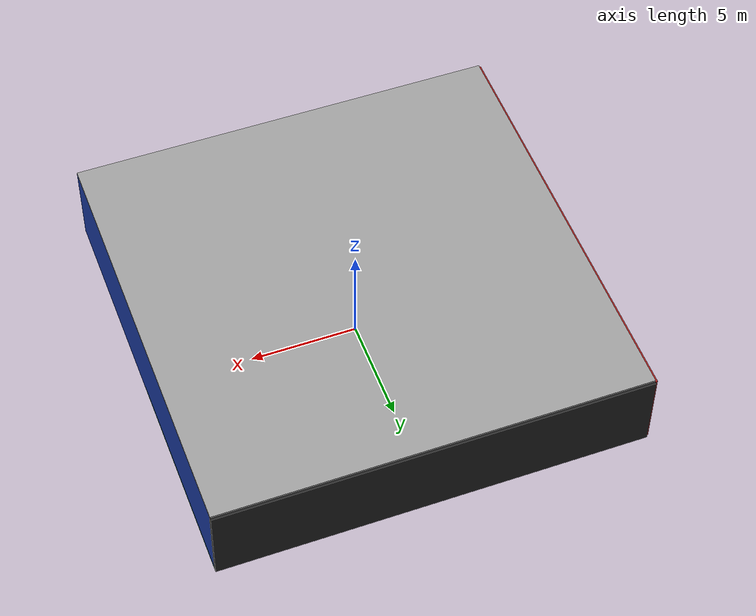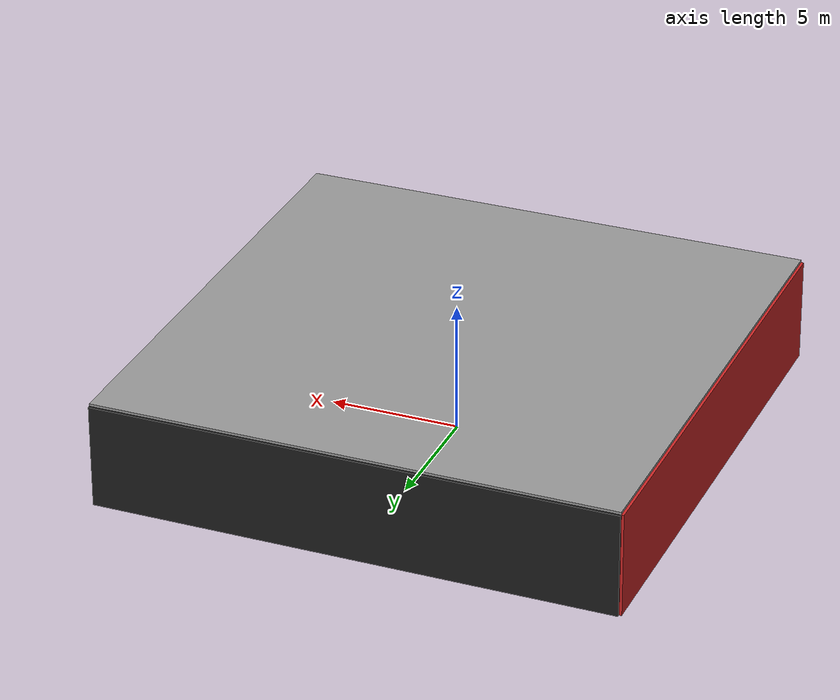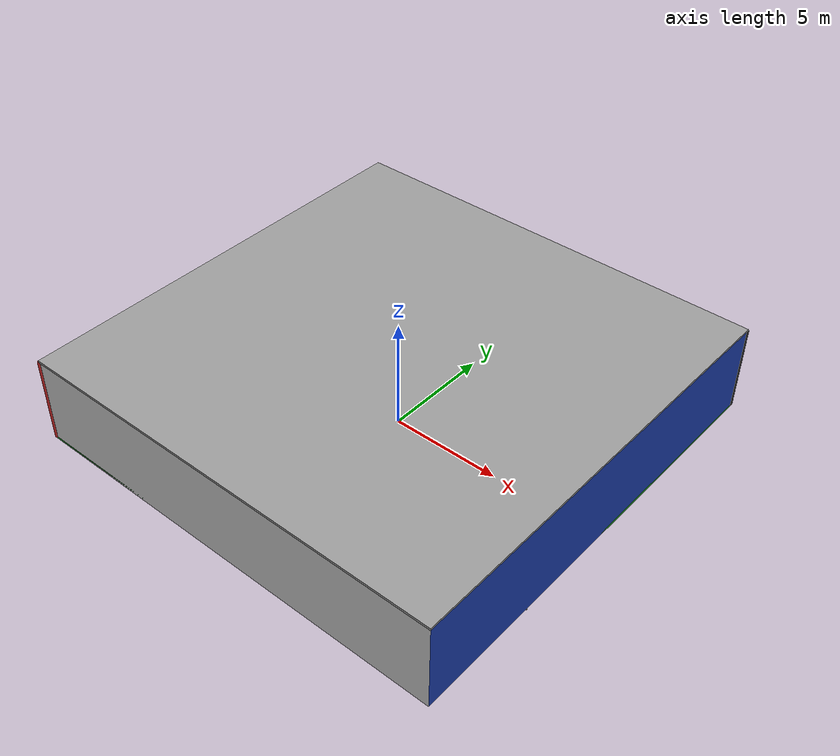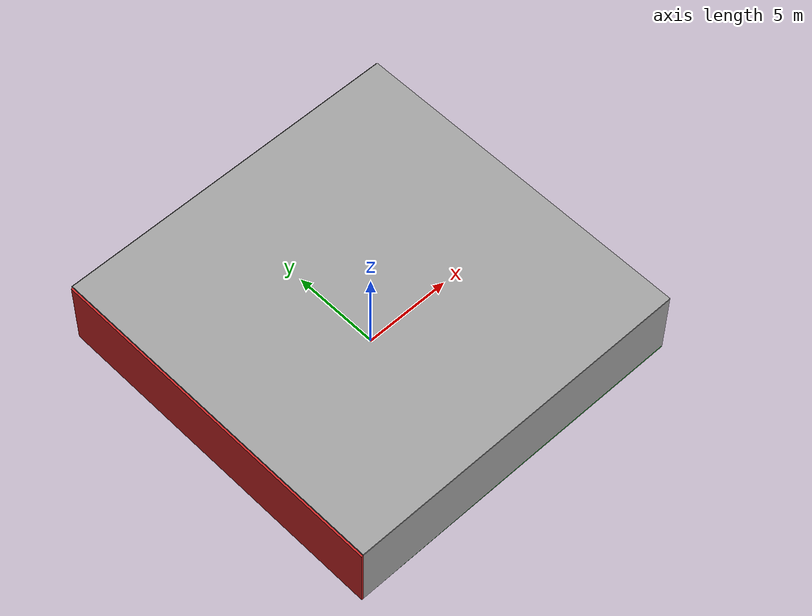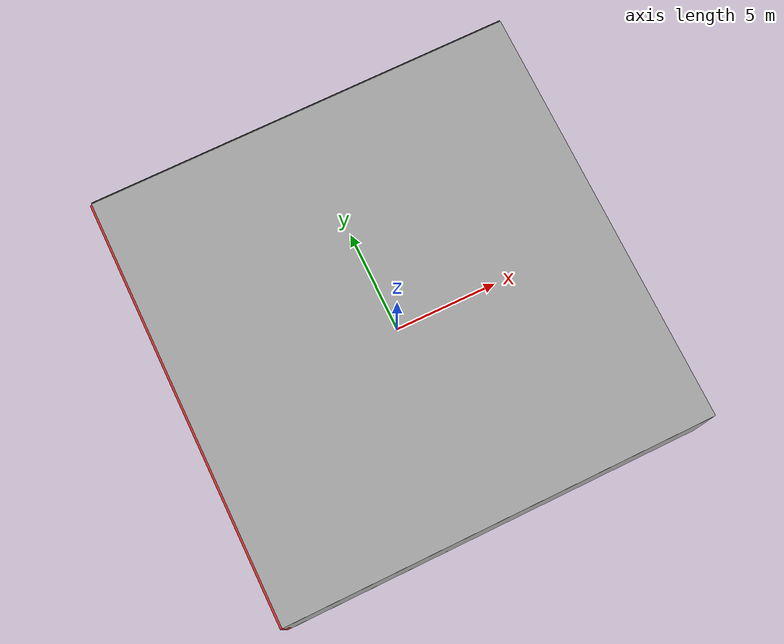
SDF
<sdf version="1.4">
 <world name="default">
  <physics type="ode">
   <max_step_size>0.001</max_step_size>
   <real_time_factor>1</real_time_factor>
   <real_time_update_rate>1000</real_time_update_rate>
   <gravity>0 0 -9.8</gravity>
  </physics>
  <scene><ambient>0.4 0.4 0.4 1</ambient><background>0.7 0.7 0.7 1</background><shadows>1</shadows></scene>
  <model name="Surrounding">
   <static>1</static>
   <link name="Ceiling">
    <collision name="Ceiling_Collision"><geometry><box><size>20 20 0.1</size></box></geometry></collision>
    <visual name="Ceiling_Visual">
     <geometry><box><size>20 20 0.1</size></box></geometry>
     <material>
      <script><uri>file://media/materials/scripts/gazebo.material</uri><name>Gazebo/Grey</name></script>
     </material>
    </visual>
    <pose>0 0 4.05 0 0 0</pose>
   </link>
   <link name="Wall_South">
    <collision name="Wall_South_Collision">
     <geometry><box><size>20 0 4</size></box></geometry>
     <pose>0 0 2 0 -0 0</pose>
    </collision>
    <visual name="Wall_South_Visual">
     <pose>0 0 2 0 -0 0</pose>
     <geometry><box><size>20 0 4</size></box></geometry>
     <material>
      <script><uri>file://media/materials/scripts/gazebo.material</uri><name>Gazebo/CloudySky</name></script>
     </material>
    </visual>
    <velocity_decay><linear>0</linear><angular>0</angular></velocity_decay>
    <pose>0 -10 0 0 -0 0</pose>
   </link>
   <link name="Wall_East">
    <collision name="Wall_21_Collision">
     <geometry><box><size>20 0 4</size></box></geometry>
     <pose>0 0 2 0 -0 0</pose>
    </collision>
    <visual name="Wall_21_Visual">
     <pose>0 0 2 0 -0 0</pose>
     <geometry><box><size>20 0 4</size></box></geometry>
     <material>
      <script><uri>file://media/materials/scripts/gazebo.material</uri><name>Gazebo/BlueLaser</name></script>
     </material>
    </visual>
    <velocity_decay><linear>0</linear><angular>0</angular></velocity_decay>
    <pose>10 0 0 0 -0 1.5708</pose>
   </link>
   <link name="Wall_North">
    <collision name="Wall_22_Collision">
     <geometry><box><size>20 0.2 4</size></box></geometry>
     <pose>0 0 2 0 -0 0</pose>
    </collision>
    <visual name="Wall_22_Visual">
     <pose>0 0 2 0 -0 0</pose>
     <geometry><box><size>20 0.2 4</size></box></geometry>
     <material>
      <script><uri>file://media/materials/scripts/gazebo.material</uri><name>Gazebo/Black</name></script>
     </material>
    </visual>
    <velocity_decay><linear>0</linear><angular>0</angular></velocity_decay>
    <pose>0 10 0 0 -0 0</pose>
   </link>
   <link name="Wall_West">
    <collision name="Wall_23_Collision">
     <geometry><box><size>20 0.2 4</size></box></geometry>
     <pose>0 0 2 0 -0 0</pose>
    </collision>
    <visual name="Wall_23_Visual">
     <pose>0 0 2 0 -0 0</pose>
     <geometry><box><size>20 0.2 4</size></box></geometry>
     <material>
      <script><uri>file://media/materials/scripts/gazebo.material</uri><name>Gazebo/RedBright</name></script>
     </material>
    </visual>
    <velocity_decay><linear>0</linear><angular>0</angular></velocity_decay>
    <pose>-10 0 0 0 0 -1.5708</pose>
   </link>
   <link name="Ground_link">
    <collision name="collision">
     <pose>0 0 .05 0 -0 0</pose>
     <geometry><box><size>20 20 0.1</size></box></geometry>
    </collision>
    <visual name="visual">
     <pose>0 0 .05 0 -0 0</pose>
     <geometry><box><size>20 20 0.1</size></box></geometry>
     <material>
      <script><uri>file://media/materials/scripts/gazebo.material</uri><name>Gazebo/Green</name></script>
     </material>
    </visual>
   </link>
   <static>1</static>
  </model>
  <spherical_coordinates>
   <surface_model>EARTH_WGS84</surface_model>
   <latitude_deg>0</latitude_deg>
   <longitude_deg>0</longitude_deg>
   <elevation>0</elevation>
   <heading_deg>0</heading_deg>
  </spherical_coordinates>
  <light name="lightball_0" type="diffuse">
   <diffuse>0.8 0.8 0.8 1</diffuse>
   <specular>0.2 0.2 0.2 1</specular>
   <attenuation>
    <range>100</range>
    <constant>0.7</constant>
    <linear>0.01</linear>
    <quadratic>0.001</quadratic>
   </attenuation>
   <direction>-0.5 0.1 -0.9</direction>
   <pose>-7.83642040015 -4.41997736614 3.72200089452 0 0 0</pose>
  </light>
  <light name="lightball_1" type="diffuse">
   <diffuse>0.8 0.8 0.8 1</diffuse>
   <specular>0.2 0.2 0.2 1</specular>
   <attenuation>
    <range>100</range>
    <constant>0.7</constant>
    <linear>0.01</linear>
    <quadratic>0.001</quadratic>
   </attenuation>
   <direction>-0.5 0.1 -0.9</direction>
   <pose>-0.631213721631 -8.84035350699 2.96863694862 0 0 0</pose>
  </light>
  <light name="lightball_2" type="diffuse">
   <diffuse>0.8 0.8 0.8 1</diffuse>
   <specular>0.2 0.2 0.2 1</specular>
   <attenuation>
    <range>100</range>
    <constant>0.7</constant>
    <linear>0.01</linear>
    <quadratic>0.001</quadratic>
   </attenuation>
   <direction>-0.5 0.1 -0.9</direction>
   <pose>-6.79871079178 9.31565864293 2.83796619533 0 0 0</pose>
  </light>
  <light name="lightball_3" type="diffuse">
   <diffuse>0.8 0.8 0.8 1</diffuse>
   <specular>0.2 0.2 0.2 1</specular>
   <attenuation>
    <range>100</range>
    <constant>0.7</constant>
    <linear>0.01</linear>
    <quadratic>0.001</quadratic>
   </attenuation>
   <direction>-0.5 0.1 -0.9</direction>
   <pose>9.60593788318 -4.52122833741 2.72425457757 0 0 0</pose>
  </light>
  <light name="lightball_4" type="diffuse">
   <diffuse>0.8 0.8 0.8 1</diffuse>
   <specular>0.2 0.2 0.2 1</specular>
   <attenuation>
    <range>100</range>
    <constant>0.7</constant>
    <linear>0.01</linear>
    <quadratic>0.001</quadratic>
   </attenuation>
   <direction>-0.5 0.1 -0.9</direction>
   <pose>-3.42041858667 -9.74841323039 2.18965368949 0 0 0</pose>
  </light>
  <light name="lightball_5" type="diffuse">
   <diffuse>0.8 0.8 0.8 1</diffuse>
   <specular>0.2 0.2 0.2 1</specular>
   <attenuation>
    <range>100</range>
    <constant>0.7</constant>
    <linear>0.01</linear>
    <quadratic>0.001</quadratic>
   </attenuation>
   <direction>-0.5 0.1 -0.9</direction>
   <pose>-8.51146526619 -0.34982600351 3.55650113949 0 0 0</pose>
  </light>
  <light name="lightball_6" type="diffuse">
   <diffuse>0.8 0.8 0.8 1</diffuse>
   <specular>0.2 0.2 0.2 1</specular>
   <attenuation>
    <range>100</range>
    <constant>0.7</constant>
    <linear>0.01</linear>
    <quadratic>0.001</quadratic>
   </attenuation>
   <direction>-0.5 0.1 -0.9</direction>
   <pose>9.39064658676 -1.83292401427 3.50354917356 0 0 0</pose>
  </light>
  <light name="lightball_7" type="diffuse">
   <diffuse>0.8 0.8 0.8 1</diffuse>
   <specular>0.2 0.2 0.2 1</specular>
   <attenuation>
    <range>100</range>
    <constant>0.7</constant>
    <linear>0.01</linear>
    <quadratic>0.001</quadratic>
   </attenuation>
   <direction>-0.5 0.1 -0.9</direction>
   <pose>-1.43019680237 6.30154428094 3.57627450358 0 0 0</pose>
  </light>
  <light name="lightball_8" type="diffuse">
   <diffuse>0.8 0.8 0.8 1</diffuse>
   <specular>0.2 0.2 0.2 1</specular>
   <attenuation>
    <range>100</range>
    <constant>0.7</constant>
    <linear>0.01</linear>
    <quadratic>0.001</quadratic>
   </attenuation>
   <direction>-0.5 0.1 -0.9</direction>
   <pose>-8.9293037207 4.13259715592 1.27986918683 0 0 0</pose>
  </light>
  <include>
   <uri>model://construction_cone</uri>
   <pose>-8.23784488981 4.98662587919 0 0 0 1.17827396586</pose>
  </include>
  <include><uri>model://cabinet</uri><pose>-6.72611101114 7.36317328262 0 0 0 1.91644438674</pose></include>
  <include><uri>model://cabinet</uri><pose>-1.90519304385 -3.40524767901 0 0 0 0.546056091764</pose></include>
  <include><uri>model://table</uri><pose>-2.41460789727 4.16425801517 0 0 0 3.10919504056</pose></include>
  <include>
   <uri>model://robocup_3Dsim_goal</uri>
   <pose>2.44977494824 -6.871059039 0 0 0 0.306323867109</pose>
  </include>
  <include><uri>model://cabinet</uri><pose>0.623971451394 2.34093194742 0 0 0 0.315333279849</pose></include>
  <include><uri>model://cabinet</uri><pose>6.94489308026 -5.59493540972 0 0 0 1.02668097848</pose></include>
  <include>
   <uri>model://textured_shapes</uri>
   <pose>8.59058973924 -2.56175465995 0 0 0 0.389538528837</pose>
  </include>
 </world>
</sdf>

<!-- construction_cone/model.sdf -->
<sdf version="1.5">
  <model name="Construction Cone">
    <link name="link">
      <collision name="collision">
        <geometry>
          <mesh>
            <scale>10 10 10</scale>
            <uri>file://isr-testbed/construction_cone/meshes/construction_cone.dae</uri>
          </mesh>
        </geometry>
      </collision>
      <visual name="visual">
        <geometry>
          <mesh>
            <scale>10 10 10</scale>
            <uri>file://isr-testbed/construction_cone/meshes/construction_cone.dae</uri>
          </mesh>
        </geometry>
      </visual>
    </link>
  </model>
</sdf>

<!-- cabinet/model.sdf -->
<sdf version="1.5">
  <model name="cabinet">
    <static>true</static>
    <link name="cabinet_bottom_plate">
      <inertial>
        <pose>0 0 -1 0 0 0</pose>
        <inertia>
          <ixx>2.050000</ixx>
          <ixy>0</ixy>
          <ixz>0</ixz>
          <iyy>2.050000</iyy>
          <iyz>0</iyz>
          <izz>2.050000</izz>
        </inertia>
        <mass>25.000000</mass>
      </inertial>
      <collision name="cabinet_bottom_plate_geom">
        <pose>0 0 0.010000 0 0 0</pose>
        <geometry>
          <box>
            <size>0.450000 0.450000 0.020000</size>
          </box>
        </geometry>
      </collision>
      <visual name="cabinet_bottom_plate_geom_visual">
        <pose>0 0 0.010000 0 0 0</pose>
        <geometry>
          <box>
            <size>0.450000 0.450000 0.020000</size>
          </box>
        </geometry>
        <material>
          <script>
            <uri>model://media/materials/scripts/gazebo.material</uri>
            <name>Gazebo/Wood</name>
          </script>
        </material>
      </visual>
      <collision name="cabinet_bottom_plate_geom_cabinet_back_plate">
        <pose>0.235000 0 0.510000 0 0 0</pose>
        <geometry>
          <box>
            <size>0.020000 0.450000 1.020000</size>
          </box>
        </geometry>
      </collision>
      <visual name="cabinet_bottom_plate_geom_cabinet_back_plate_visual">
        <pose>0.235000 0 0.510000 0 0 0</pose>
        <geometry>
          <box>
            <size>0.020000 0.450000 1.020000</size>
          </box>
        </geometry>
        <material>
          <script>
            <uri>model://media/materials/scripts/gazebo.material</uri>
            <name>Gazebo/Wood</name>
          </script>
        </material>
      </visual>
      <collision name="cabinet_bottom_plate_geom_cabinet_left_plate">
        <pose>0 0.235000 0.510000 0 0 0</pose>
        <geometry>
          <box>
            <size>0.450000 0.020000 1.020000</size>
          </box>
        </geometry>
      </collision>
      <visual name="cabinet_bottom_plate_geom_cabinet_left_plate_visual">
        <pose>0 0.235000 0.510000 0 0 0</pose>
        <geometry>
          <box>
            <size>0.450000 0.020000 1.020000</size>
          </box>
        </geometry>
        <material>
          <script>
            <uri>model://media/materials/scripts/gazebo.material</uri>
            <name>Gazebo/Wood</name>
          </script>
        </material>
      </visual>
      <collision name="cabinet_bottom_plate_geom_cabinet_middle_plate">
        <pose>0 0 0.510000 0 0 0</pose>
        <geometry>
          <box>
            <size>0.450000 0.450000 0.020000</size>
          </box>
        </geometry>
      </collision>
      <visual name="cabinet_bottom_plate_geom_cabinet_middle_plate_visual">
        <pose>0 0 0.510000 0 0 0</pose>
        <geometry>
          <box>
            <size>0.450000 0.450000 0.020000</size>
          </box>
        </geometry>
        <material>
          <script>
            <uri>model://media/materials/scripts/gazebo.material</uri>
            <name>Gazebo/Wood</name>
          </script>
        </material>
      </visual>
      <collision name="cabinet_bottom_plate_geom_cabinet_right_plate">
        <pose>0 -0.235000 0.510000 0 0 0</pose>
        <geometry>
          <box>
            <size>0.450000 0.020000 1.020000</size>
          </box>
        </geometry>
      </collision>
      <visual name="cabinet_bottom_plate_geom_cabinet_right_plate_visual">
        <pose>0 -0.235000 0.510000 0 0 0</pose>
        <geometry>
          <box>
            <size>0.450000 0.020000 1.020000</size>
          </box>
        </geometry>
        <material>
          <script>
            <uri>model://media/materials/scripts/gazebo.material</uri>
            <name>Gazebo/Wood</name>
          </script>
        </material>
      </visual>
      <collision name="cabinet_bottom_plate_geom_cabinet_top_plate">
        <pose>0 0 1.010000 0 0 0</pose>
        <geometry>
          <box>
            <size>0.450000 0.450000 0.020000</size>
          </box>
        </geometry>
      </collision>
      <visual name="cabinet_bottom_plate_geom_cabinet_top_plate_visual">
        <pose>0 0 1.010000 0 0 0</pose>
        <geometry>
          <box>
            <size>0.450000 0.450000 0.020000</size>
          </box>
        </geometry>
        <material>
          <script>
            <uri>model://media/materials/scripts/gazebo.material</uri>
            <name>Gazebo/Wood</name>
          </script>
        </material>
      </visual>
    </link>
  </model>
</sdf>

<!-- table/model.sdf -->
<sdf version="1.5">
  <model name="table">
    <static>true</static>
    <link name="link">
      <collision name="surface">
        <pose>0 0 1.0 0 0 0</pose>
        <geometry>
          <box>
            <size>1.5 0.8 0.03</size>
          </box>
        </geometry>
        <surface>
          <friction>
            <ode>
              <mu>0.6</mu>
              <mu2>0.6</mu2>
            </ode>
          </friction>
        </surface>
      </collision>
      <visual name="visual1">
        <pose>0 0 1.0 0 0 0</pose>
        <geometry>
          <box>
            <size>1.5 0.8 0.03</size>
          </box>
        </geometry>
        <material>
          <script>
            <uri>model://media/materials/scripts/gazebo.material</uri>
            <name>Gazebo/Wood</name>
          </script>
        </material>
      </visual>
      <collision name="front_left_leg">
        <pose>0.68 0.38 0.5 0 0 0</pose>
        <geometry>
          <cylinder>
            <radius>0.02</radius>
            <length>1.0</length>
          </cylinder>
        </geometry>
      </collision>
      <visual name="front_left_leg">
        <pose>0.68 0.38 0.5 0 0 0</pose>
        <geometry>
          <cylinder>
            <radius>0.02</radius>
            <length>1.0</length>
          </cylinder>
        </geometry>
        <material>
          <script>
            <uri>model://media/materials/scripts/gazebo.material</uri>
            <name>Gazebo/Grey</name>
          </script>
        </material>
      </visual>
      <collision name="front_right_leg">
        <pose>0.68 -0.38 0.5 0 0 0</pose>
        <geometry>
          <cylinder>
            <radius>0.02</radius>
            <length>1.0</length>
          </cylinder>
        </geometry>
      </collision>
      <visual name="front_right_leg">
        <pose>0.68 -0.38 0.5 0 0 0</pose>
        <geometry>
          <cylinder>
            <radius>0.02</radius>
            <length>1.0</length>
          </cylinder>
        </geometry>
        <material>
          <script>
            <uri>model://media/materials/scripts/gazebo.material</uri>
            <name>Gazebo/Grey</name>
          </script>
        </material>
      </visual>
      <collision name="back_right_leg">
        <pose>-0.68 -0.38 0.5 0 0 0</pose>
        <geometry>
          <cylinder>
            <radius>0.02</radius>
            <length>1.0</length>
          </cylinder>
        </geometry>
      </collision>
      <visual name="back_right_leg">
        <pose>-0.68 -0.38 0.5 0 0 0</pose>
        <geometry>
          <cylinder>
            <radius>0.02</radius>
            <length>1.0</length>
          </cylinder>
        </geometry>
        <material>
          <script>
            <uri>model://media/materials/scripts/gazebo.material</uri>
            <name>Gazebo/Grey</name>
          </script>
        </material>
      </visual>
      <collision name="back_left_leg">
        <pose>-0.68 0.38 0.5 0 0 0</pose>
        <geometry>
          <cylinder>
            <radius>0.02</radius>
            <length>1.0</length>
          </cylinder>
        </geometry>
      </collision>
      <visual name="back_left_leg">
        <pose>-0.68 0.38 0.5 0 0 0</pose>
        <geometry>
          <cylinder>
            <radius>0.02</radius>
            <length>1.0</length>
          </cylinder>
        </geometry>
        <material>
          <script>
            <uri>model://media/materials/scripts/gazebo.material</uri>
            <name>Gazebo/Grey</name>
          </script>
        </material>
      </visual>
    </link>
  </model>
</sdf>

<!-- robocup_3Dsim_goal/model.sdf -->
<sdf version="1.5">
  <model name="robocup_3d_goal">
    <static>true</static>
    <link name="left_post">
      <pose>0 1.05 0.45 0 0 0</pose>
      <collision name="collision">
        <geometry>
          <cylinder>
            <radius>0.05</radius>
            <length>0.9</length>
          </cylinder>
        </geometry>
      </collision>
      <visual name="visual">
        <geometry>
          <cylinder>
            <radius>0.05</radius>
            <length>0.9</length>
          </cylinder>
        </geometry>
        <material>
          <script>
            <uri>file://media/materials/scripts/gazebo.material</uri>
            <name>Gazebo/ZincYellow</name>
          </script>
        </material>
      </visual>
    </link>
    <link name="left_support_horiz_lower">
      <pose>0.30 1.05 0.01 0 0 0</pose>
      <collision name="collision">
        <geometry>
          <box>
            <size>0.50 0.02 0.02</size>
          </box>
        </geometry>
      </collision>
      <visual name="visual">
        <geometry>
          <box>
            <size>0.50 0.02 0.02</size>
          </box>
        </geometry>
        <material>
          <script>
            <uri>file://media/materials/scripts/gazebo.material</uri>
            <name>Gazebo/White</name>
          </script>
        </material>
      </visual>
    </link>
    <link name="left_support_horiz_upper">
      <pose>0.30 1.05 0.79 0 0 0</pose>
      <collision name="collision">
        <geometry>
          <box>
            <size>0.50 0.02 0.02</size>
          </box>
        </geometry>
      </collision>
      <visual name="visual">
        <geometry>
          <box>
            <size>0.50 0.02 0.02</size>
          </box>
        </geometry>
        <material>
          <script>
            <uri>file://media/materials/scripts/gazebo.material</uri>
            <name>Gazebo/White</name>
          </script>
        </material>
      </visual>
    </link>
    <link name="left_support_vertical">
      <pose>0.56 1.05 0.4 0 1.5708 0</pose>
      <collision name="collision">
        <geometry>
          <box>
            <size>0.80 0.02 0.02</size>
          </box>
        </geometry>
      </collision>
      <visual name="visual">
        <geometry>
          <box>
            <size>0.80 0.02 0.02</size>
          </box>
        </geometry>
        <material>
          <script>
            <uri>file://media/materials/scripts/gazebo.material</uri>
            <name>Gazebo/White</name>
          </script>
        </material>
      </visual>
    </link>
    <link name="right_support_horiz_lower">
      <pose>0.30 -1.05 0.01 0 0 0</pose>
      <collision name="collision">
        <geometry>
          <box>
            <size>0.50 0.02 0.02</size>
          </box>
        </geometry>
      </collision>
      <visual name="visual">
        <geometry>
          <box>
            <size>0.50 0.02 0.02</size>
          </box>
        </geometry>
        <material>
          <script>
            <uri>file://media/materials/scripts/gazebo.material</uri>
            <name>Gazebo/White</name>
          </script>
        </material>
      </visual>
    </link>
    <link name="right_support_horiz_upper">
      <pose>0.30 -1.05 0.79 0 0 0</pose>
      <collision name="collision">
        <geometry>
          <box>
            <size>0.50 0.02 0.02</size>
          </box>
        </geometry>
      </collision>
      <visual name="visual">
        <geometry>
          <box>
            <size>0.50 0.02 0.02</size>
          </box>
        </geometry>
        <material>
          <script>
            <uri>file://media/materials/scripts/gazebo.material</uri>
            <name>Gazebo/White</name>
          </script>
        </material>
      </visual>
    </link>
    <link name="right_support_vertical">
      <pose>0.56 -1.05 0.4 0 1.5708 0</pose>
      <collision name="collision">
        <geometry>
          <box>
            <size>0.80 0.02 0.02</size>
          </box>
        </geometry>
      </collision>
      <visual name="visual">
        <geometry>
          <box>
            <size>0.80 0.02 0.02</size>
          </box>
        </geometry>
        <material>
          <script>
            <uri>file://media/materials/scripts/gazebo.material</uri>
            <name>Gazebo/White</name>
          </script>
        </material>
      </visual>
    </link>
    <link name="center_support_horiz_lower">
      <pose>0.56 0 0.01 0 1.5708 0</pose>
      <collision name="collision">
        <geometry>
          <box>
            <size>0.02 2.08 0.02</size>
          </box>
        </geometry>
      </collision>
      <visual name="visual">
        <geometry>
          <box>
            <size>0.02 2.08 0.02</size>
          </box>
        </geometry>
        <material>
          <script>
            <uri>file://media/materials/scripts/gazebo.material</uri>
            <name>Gazebo/White</name>
          </script>
        </material>
      </visual>
    </link>
    <link name="center_support_horiz_upper">
      <pose>0.56 0 0.79 0 1.5708 0</pose>
      <collision name="collision">
        <geometry>
          <box>
            <size>0.02 2.08 0.02</size>
          </box>
        </geometry>
      </collision>
      <visual name="visual">
        <geometry>
          <box>
            <size>0.02 2.08 0.02</size>
          </box>
        </geometry>
        <material>
          <script>
            <uri>file://media/materials/scripts/gazebo.material</uri>
            <name>Gazebo/White</name>
          </script>
        </material>
      </visual>
    </link>
    <link name="right_post">
      <pose>0 -1.05 0.45 0 0 0</pose>
      <collision name="collision">
        <geometry>
          <cylinder>
            <radius>0.05</radius>
            <length>0.9</length>
          </cylinder>
        </geometry>
      </collision>
      <visual name="visual">
        <geometry>
          <cylinder>
            <radius>0.05</radius>
            <length>0.9</length>
          </cylinder>
        </geometry>
        <material>
          <script>
            <uri>file://media/materials/scripts/gazebo.material</uri>
            <name>Gazebo/ZincYellow</name>
          </script>
        </material>
      </visual>
    </link>
    <link name="crossbar">
      <pose>0 0 0.85 1.57 1.57 0</pose>
      <collision name="collision">
        <geometry>
          <cylinder>
            <radius>0.05</radius>
            <length>2.0</length>
          </cylinder>
        </geometry>
      </collision>
      <visual name="visual">
        <geometry>
          <cylinder>
            <radius>0.05</radius>
            <length>2.0</length>
          </cylinder>
        </geometry>
        <material>
          <script>
            <uri>file://media/materials/scripts/gazebo.material</uri>
            <name>Gazebo/ZincYellow</name>
          </script>
        </material>
      </visual>
    </link>
    <link name="center_net">
      <pose>0.56 0 0.40 0 0 0</pose>
      <collision name="collision">
        <geometry>
          <box>
            <size>0.01 2.1 0.80</size>
          </box>
        </geometry>
      </collision>
      <visual name="visual">
        <geometry>
          <box>
            <size>0.01 2.1 0.80</size>
          </box>
        </geometry>
        <material>
          <script>
            <uri>model://../model_source/models/robocup09_spl_field/materials/scripts/</uri>
            <uri>model://../model_source/models/robocup09_spl_field/materials/textures/</uri>
            <name>RoboCup/Net</name>
          </script>
        </material>
      </visual>
    </link>
    <link name="left_net">
      <pose>0.30 1.05 0.40 0 0 0</pose>
      <collision name="collision">
        <geometry>
          <box>
            <size>0.50 0.01 0.76</size>
          </box>
        </geometry>
      </collision>
      <visual name="visual">
        <geometry>
          <box>
            <size>0.50 0.01 0.76</size>
          </box>
        </geometry>
        <material>
          <script>
            <uri>model://../model_source/models/robocup09_spl_field/materials/scripts/</uri>
            <uri>model://../model_source/models/robocup09_spl_field/materials/textures/</uri>
            <name>RoboCup/Net</name>
          </script>
        </material>
      </visual>
    </link>
    <link name="right_net">
      <pose>0.30 -1.05 0.40 0 0 0</pose>
      <collision name="collision">
        <geometry>
          <box>
            <size>0.50 0.01 0.76</size>
          </box>
        </geometry>
      </collision>
      <visual name="visual">
        <geometry>
          <box>
            <size>0.50 0.01 0.76</size>
          </box>
        </geometry>
        <material>
          <script>
            <uri>model://../model_source/models/robocup09_spl_field/materials/scripts/</uri>
            <uri>model://../model_source/models/robocup09_spl_field/materials/textures/</uri>
            <name>RoboCup/Net</name>
          </script>
        </material>
      </visual>
    </link>
  </model>
</sdf>

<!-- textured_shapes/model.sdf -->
<sdf version="1.6">
  <model name="textured_shapes">
    <pose>0 0 0.5 0 0 0</pose>
    <link name="box">
      <pose>0 -1.5 0 0 0 0</pose>
      <collision name="collision">
        <geometry>
          <box>
            <size>1 1 1</size>
          </box>
        </geometry>
      </collision>
      <visual name="visual">
        <geometry>
          <box>
            <size>1 1 1</size>
          </box>
        </geometry>
        <material>
          <script>
            <uri>model://../model_source/models/textured_shapes/materials/scripts</uri>
            <uri>model://../model_source/models/textured_shapes/materials/textures</uri>
            <name>TexturedShape/Squares</name>
          </script>
        </material>
      </visual>
    </link>
    <link name="sphere">
      <collision name="collision">
        <geometry>
          <sphere>
            <radius>0.5</radius>
          </sphere>
        </geometry>
      </collision>
      <visual name="visual">
        <geometry>
          <sphere>
            <radius>0.5</radius>
          </sphere>
        </geometry>
        <material>
          <script>
            <uri>model://../model_source/models/textured_shapes/materials/scripts</uri>
            <uri>model://../model_source/models/textured_shapes/materials/textures</uri>
            <name>TexturedShape/Squares</name>
          </script>
        </material>
      </visual>
    </link>
    <link name="cylinder">
      <pose>0 1.5 0 0 0 0</pose>
      <collision name="collision">
        <geometry>
          <cylinder>
            <radius>0.5</radius>
            <length>1</length>
          </cylinder>
        </geometry>
      </collision>
      <visual name="visual">
        <geometry>
          <cylinder>
            <radius>0.5</radius>
            <length>1</length>
          </cylinder>
        </geometry>
        <material>
          <script>
            <uri>model://../model_source/models/textured_shapes/materials/scripts</uri>
            <uri>model://../model_source/models/textured_shapes/materials/textures</uri>
            <name>TexturedShape/Squares</name>
          </script>
        </material>
      </visual>
    </link>
  </model>
</sdf>
